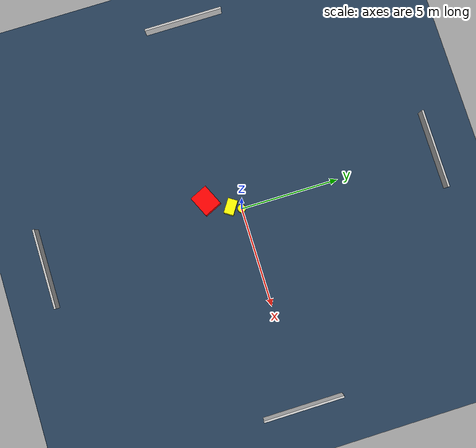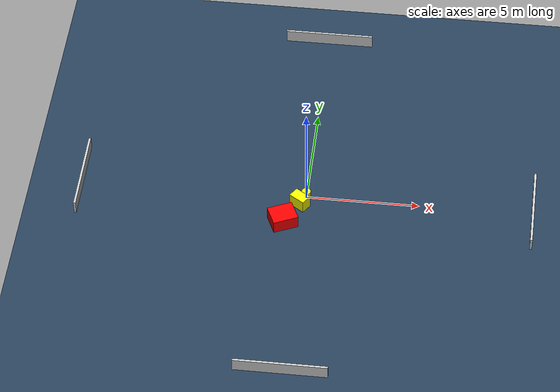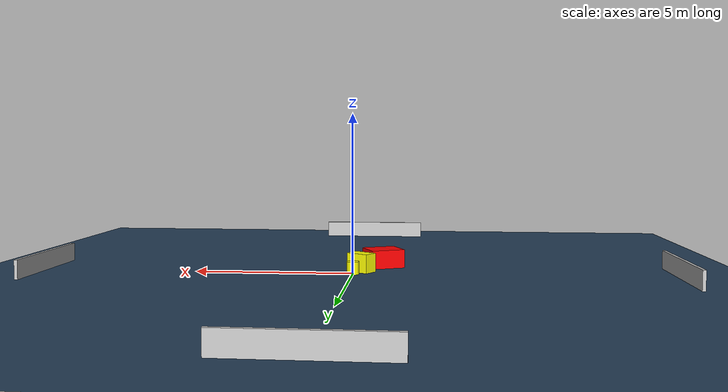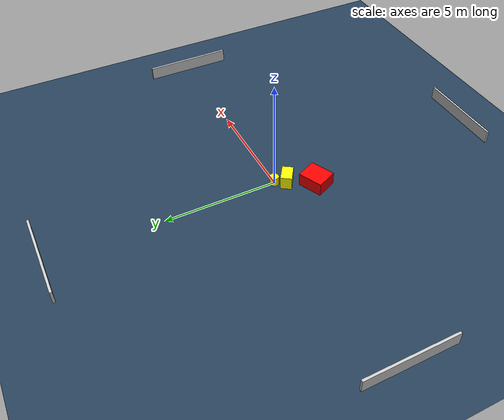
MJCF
<?xml version="1.0" ?>
<mujoco model="generated_environment">
  <option timestep="0.01" integrator="RK4" cone="elliptic"/>
  <default>
    <geom density="1"/>
  </default>
  <asset>
    <texture builtin="gradient" height="3072" name="skybox" rgb1="0.3 0.5 0.7" rgb2="0 0 0" type="skybox" width="512"/>
    <texture builtin="checker" height="300" name="groundplane" rgb1="0.2 0.3 0.4" rgb2="0.1 0.2 0.3" type="2d" width="300"/>
    <material name="groundplane" reflectance="0.2" texrepeat="5 5" texture="groundplane"/>
  </asset>
  <worldbody>
    <light dir="0 0 -1" directional="true" pos="0 0 1.5"/>
    <geom condim="3" friction="0.5 0.005 0.001" material="groundplane" name="floor" pos="0 0 0" size="0 0 0.05" type="plane"/>
    <body name="walls">
      <geom name="wall_1" condim="4" pos="-10.0 0.0 0.3" rgba="0.800000011920929 0.800000011920929 0.800000011920929 1.0" size="0.05 2.0 0.3" type="box"/>
      <geom name="wall_2" condim="4" pos="10.0 0.0 0.3" rgba="0.800000011920929 0.800000011920929 0.800000011920929 1.0" size="0.05 2.0 0.3" type="box"/>
      <geom name="wall_3" condim="4" pos="0.0 -10.0 0.3" rgba="0.800000011920929 0.800000011920929 0.800000011920929 1.0" size="2.0 0.05 0.3" type="box"/>
      <geom name="wall_4" condim="4" pos="0.0 10.0 0.3" rgba="0.800000011920929 0.800000011920929 0.800000011920929 1.0" size="2.0 0.05 0.3" type="box"/>
    </body>
    <body name="robot">
      <joint name="joint_x" type="slide" pos="0 0 0" axis="1 0 0"/>
      <joint name="joint_y" type="slide" pos="0 0 0" axis="0 1 0"/>
      <geom name="robot" type="cylinder" pos="0.0 0.0 0.2" size="0.2 0.2 0.0" mass="5.0" friction="1.0 0.005 0.0001" condim="4" rgba="1.0 1.0 0.0 1.0"/>
    </body>
    <body name="obstacle_1_movable">
      <geom name="obstacle_1_movable" condim="4" pos="-0.2303226843287479 -0.4887131128169816 0.3" euler="0 0 146.2320441755394" friction="0.0 0.005 0.001" rgba="1.0 1.0 0.0 1.0" size="0.38145778366958577 0.24624539844798762 0.3" type="box" mass="0.1"/>
      <joint type="free"/>
    </body>
    <body name="obstacle_2_static">
      <geom name="obstacle_2_static" condim="4" pos="-0.8652222213583441 -1.5752774278381234 0.3" euler="0 0 114.51609476719152" friction="0.0 0.005 0.001" rgba="1.0 0.0 0.0 1.0" size="0.4754176576120929 0.5621152256665353 0.3" type="box"/>
    </body>
  </worldbody>
  <actuator>
    <motor name="actuator_x" joint="joint_x" gear="1" ctrlrange="-1 1"/>
    <motor name="actuator_y" joint="joint_y" gear="1" ctrlrange="-1 1"/>
  </actuator>
</mujoco>
